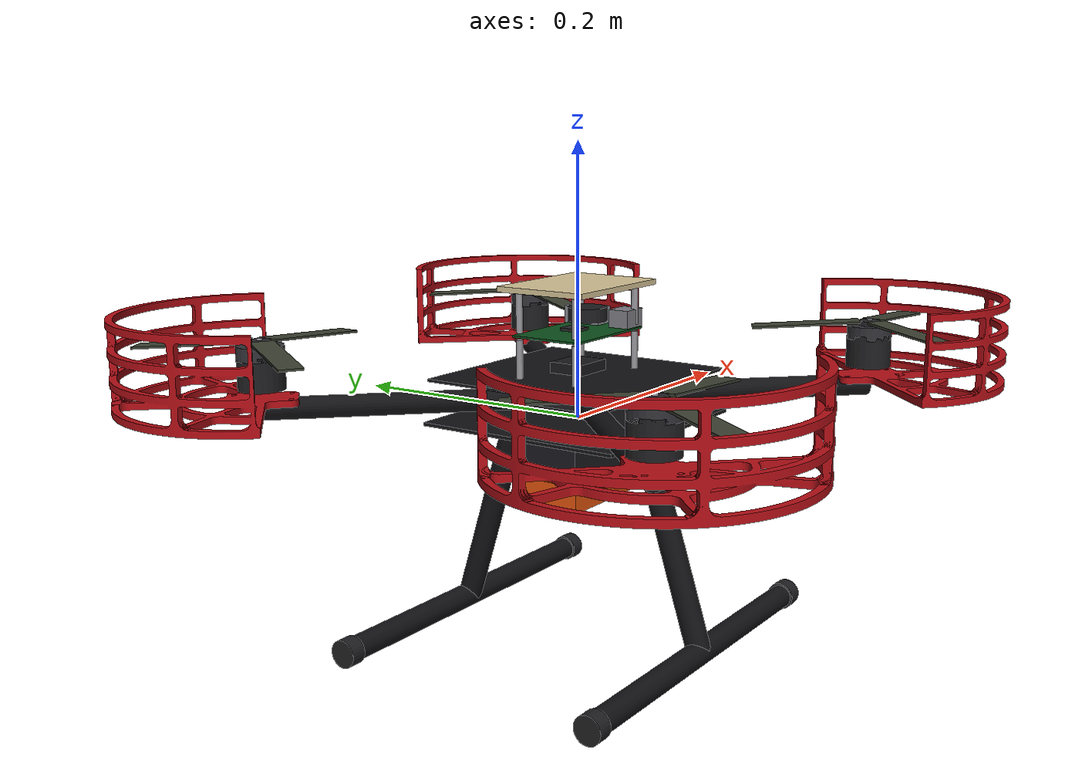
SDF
<?xml version="1.0" encoding="UTF-8"?>
<sdf version='1.9'>
  <model name='rjx_f450'>
    <include merge='true'>
      <uri>model://rjx_f450_base</uri>
    </include>
    <plugin filename="gz-sim-multicopter-motor-model-system"
      name="gz::sim::systems::MulticopterMotorModel">
      <jointName>rotor_0_joint</jointName>
      <linkName>rotor_0</linkName>
      <turningDirection>ccw</turningDirection>
      <timeConstantUp>0.0125</timeConstantUp>
      <timeConstantDown>0.025</timeConstantDown>
      <maxRotVelocity>1000.0</maxRotVelocity>
      <motorConstant>1.8e-05</motorConstant>
      <momentConstant>0.013</momentConstant>
      <commandSubTopic>command/motor_speed</commandSubTopic>
      <motorNumber>0</motorNumber>
      <rotorDragCoefficient>6.5e-05</rotorDragCoefficient>
      <rollingMomentCoefficient>1e-06</rollingMomentCoefficient>
      <rotorVelocitySlowdownSim>10</rotorVelocitySlowdownSim>
      <motorType>velocity</motorType>
    </plugin>
    <plugin filename="gz-sim-multicopter-motor-model-system"
      name="gz::sim::systems::MulticopterMotorModel">
      <jointName>rotor_1_joint</jointName>
      <linkName>rotor_1</linkName>
      <turningDirection>ccw</turningDirection>
      <timeConstantUp>0.0125</timeConstantUp>
      <timeConstantDown>0.025</timeConstantDown>
      <maxRotVelocity>1000.0</maxRotVelocity>
      <motorConstant>1.8e-05</motorConstant>
      <momentConstant>0.013</momentConstant>
      <commandSubTopic>command/motor_speed</commandSubTopic>
      <motorNumber>1</motorNumber>
      <rotorDragCoefficient>6.5e-05</rotorDragCoefficient>
      <rollingMomentCoefficient>1e-06</rollingMomentCoefficient>
      <rotorVelocitySlowdownSim>10</rotorVelocitySlowdownSim>
      <motorType>velocity</motorType>
    </plugin>
    <plugin filename="gz-sim-multicopter-motor-model-system"
      name="gz::sim::systems::MulticopterMotorModel">
      <jointName>rotor_2_joint</jointName>
      <linkName>rotor_2</linkName>
      <turningDirection>cw</turningDirection>
      <timeConstantUp>0.0125</timeConstantUp>
      <timeConstantDown>0.025</timeConstantDown>
      <maxRotVelocity>1000.0</maxRotVelocity>
      <motorConstant>1.8e-05</motorConstant>
      <momentConstant>0.013</momentConstant>
      <commandSubTopic>command/motor_speed</commandSubTopic>
      <motorNumber>2</motorNumber>
      <rotorDragCoefficient>6.5e-05</rotorDragCoefficient>
      <rollingMomentCoefficient>1e-06</rollingMomentCoefficient>
      <rotorVelocitySlowdownSim>10</rotorVelocitySlowdownSim>
      <motorType>velocity</motorType>
    </plugin>
    <plugin filename="gz-sim-multicopter-motor-model-system"
      name="gz::sim::systems::MulticopterMotorModel">
      <jointName>rotor_3_joint</jointName>
      <linkName>rotor_3</linkName>
      <turningDirection>cw</turningDirection>
      <timeConstantUp>0.0125</timeConstantUp>
      <timeConstantDown>0.025</timeConstantDown>
      <maxRotVelocity>1000.0</maxRotVelocity>
      <motorConstant>1.8e-05</motorConstant>
      <momentConstant>0.013</momentConstant>
      <commandSubTopic>command/motor_speed</commandSubTopic>
      <motorNumber>3</motorNumber>
      <rotorDragCoefficient>6.5e-05</rotorDragCoefficient>
      <rollingMomentCoefficient>1e-06</rollingMomentCoefficient>
      <rotorVelocitySlowdownSim>10</rotorVelocitySlowdownSim>
      <motorType>velocity</motorType>
    </plugin>
    <plugin filename="MotorFailurePlugin"
      name="gz::sim::systems::MotorFailureSystem">
    </plugin>
  </model>
</sdf>

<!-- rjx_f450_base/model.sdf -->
<sdf version='1.9'>
  <model name='rjx_f450_base'>
    <self_collide>false</self_collide>
    <link name="base_link">
      <inertial>
        <mass>1.2</mass>
        <inertia>
          <ixx>0.017440</ixx><ixy>0</ixy><ixz>0</ixz>
          <iyy>0.017440</iyy><iyz>0</iyz><izz>0.032000</izz>
        </inertia>
      </inertial>
      <gravity>true</gravity>
      <velocity_decay/>
      <collision name="body_collision">
        <pose>0 0 0.02 0 0 0</pose>
        <geometry><box><size>0.17 0.17 0.10</size></box></geometry>
      </collision>
      <collision name="battery_collision">
        <pose>0 0 -0.035 0 0 0</pose>
        <geometry><box><size>0.078 0.050 0.050</size></box></geometry>
      </collision>
      <collision name="guard_0_collision">
        <pose>0.1591 -0.1591 0.052 0 0 -0.7854</pose>
        <geometry><box><size>0.20 0.20 0.065</size></box></geometry>
      </collision>
      <collision name="guard_1_collision">
        <pose>-0.1591 0.1591 0.052 0 0 2.3562</pose>
        <geometry><box><size>0.20 0.20 0.065</size></box></geometry>
      </collision>
      <collision name="guard_2_collision">
        <pose>0.1591 0.1591 0.052 0 0 0.7854</pose>
        <geometry><box><size>0.20 0.20 0.065</size></box></geometry>
      </collision>
      <collision name="guard_3_collision">
        <pose>-0.1591 -0.1591 0.052 0 0 -2.3562</pose>
        <geometry><box><size>0.20 0.20 0.065</size></box></geometry>
      </collision>
      <collision name="skid_0_collision">
        <pose>0 0.1050 -0.16 0 1.5708 0</pose>
        <geometry><cylinder><radius>0.009</radius><length>0.28</length></cylinder></geometry>
        <surface><friction><ode><mu>1.0</mu><mu2>1.0</mu2></ode></friction></surface>
      </collision>
      <collision name="skid_1_collision">
        <pose>0 -0.1050 -0.16 0 1.5708 0</pose>
        <geometry><cylinder><radius>0.009</radius><length>0.28</length></cylinder></geometry>
        <surface><friction><ode><mu>1.0</mu><mu2>1.0</mu2></ode></friction></surface>
      </collision>
      <visual name="plate_bottom">
        <pose>0 0 0 0 0 0</pose>
        <geometry><box><size>0.16 0.16 0.0025</size></box></geometry>
        <material>
          <ambient>0.07 0.07 0.08 1</ambient>
          <diffuse>0.07 0.07 0.08 1</diffuse>
          <specular>0.25 0.25 0.25 1</specular>
        </material>
      </visual>
      <visual name="plate_top">
        <pose>0 0 0.032 0 0 0</pose>
        <geometry><box><size>0.155 0.155 0.002</size></box></geometry>
        <material>
          <ambient>0.07 0.07 0.08 1</ambient>
          <diffuse>0.07 0.07 0.08 1</diffuse>
          <specular>0.25 0.25 0.25 1</specular>
        </material>
      </visual>
      <visual name="esc_4in1">
        <pose>0 0 0.0075 0 0 0</pose>
        <geometry><box><size>0.044 0.0435 0.0052</size></box></geometry>
        <material>
          <ambient>0.09 0.09 0.10 1</ambient>
          <diffuse>0.09 0.09 0.10 1</diffuse>
          <specular>0.2 0.2 0.2 1</specular>
        </material>
      </visual>
      <visual name="fc_nxtpx4v2">
        <pose>0 0 0.0385 0 0 0</pose>
        <geometry><box><size>0.032 0.027 0.008</size></box></geometry>
        <material>
          <ambient>0.10 0.10 0.11 1</ambient>
          <diffuse>0.10 0.10 0.11 1</diffuse>
          <specular>0.2 0.2 0.2 1</specular>
        </material>
      </visual>
      <visual name="arm_0">
        <pose>0.0902 -0.0902 0.016 0 1.5708 -0.7854</pose>
        <geometry><cylinder><radius>0.008</radius><length>0.195</length></cylinder></geometry>
        <material>
          <ambient>0.07 0.07 0.08 1</ambient>
          <diffuse>0.07 0.07 0.08 1</diffuse>
          <specular>0.2 0.2 0.2 1</specular>
        </material>
      </visual>
      <visual name="motor_0">
        <pose>0.1591 -0.1591 0.0425 0 0 0</pose>
        <geometry><cylinder><radius>0.0167</radius><length>0.0247</length></cylinder></geometry>
        <material>
          <ambient>0.12 0.12 0.13 1</ambient>
          <diffuse>0.12 0.12 0.13 1</diffuse>
          <specular>0.4 0.4 0.4 1</specular>
        </material>
      </visual>
      <visual name="motor_bell_0">
        <pose>0.1591 -0.1591 0.0565 0 0 0</pose>
        <geometry><cylinder><radius>0.0167</radius><length>0.01</length></cylinder></geometry>
        <material>
          <ambient>0.20 0.20 0.22 1</ambient>
          <diffuse>0.20 0.20 0.22 1</diffuse>
          <specular>0.5 0.5 0.5 1</specular>
        </material>
      </visual>
      <visual name="motor_shaft_0">
        <pose>0.1591 -0.1591 0.0635 0 0 0</pose>
        <geometry><cylinder><radius>0.002</radius><length>0.006</length></cylinder></geometry>
        <material>
          <ambient>0.6 0.6 0.62 1</ambient>
          <diffuse>0.6 0.6 0.62 1</diffuse>
          <specular>0.7 0.7 0.7 1</specular>
        </material>
      </visual>
      <visual name="prop_guard_0">
        <pose>0.1591 -0.1591 0.052 0 0 -0.7854</pose>
        <geometry><mesh>
          <uri>model://rjx_f450_base/meshes/prop_guard.stl</uri>
          <scale>0.001 0.001 0.001</scale>
        </mesh></geometry>
        <material>
          <ambient>0.72 0.06 0.09 1</ambient>
          <diffuse>0.72 0.06 0.09 1</diffuse>
          <specular>0.15 0.05 0.05 1</specular>
        </material>
      </visual>
      <visual name="arm_1">
        <pose>-0.0902 0.0902 0.016 0 1.5708 2.3562</pose>
        <geometry><cylinder><radius>0.008</radius><length>0.195</length></cylinder></geometry>
        <material>
          <ambient>0.07 0.07 0.08 1</ambient>
          <diffuse>0.07 0.07 0.08 1</diffuse>
          <specular>0.2 0.2 0.2 1</specular>
        </material>
      </visual>
      <visual name="motor_1">
        <pose>-0.1591 0.1591 0.0425 0 0 0</pose>
        <geometry><cylinder><radius>0.0167</radius><length>0.0247</length></cylinder></geometry>
        <material>
          <ambient>0.12 0.12 0.13 1</ambient>
          <diffuse>0.12 0.12 0.13 1</diffuse>
          <specular>0.4 0.4 0.4 1</specular>
        </material>
      </visual>
      <visual name="motor_bell_1">
        <pose>-0.1591 0.1591 0.0565 0 0 0</pose>
        <geometry><cylinder><radius>0.0167</radius><length>0.01</length></cylinder></geometry>
        <material>
          <ambient>0.20 0.20 0.22 1</ambient>
          <diffuse>0.20 0.20 0.22 1</diffuse>
          <specular>0.5 0.5 0.5 1</specular>
        </material>
      </visual>
      <visual name="motor_shaft_1">
        <pose>-0.1591 0.1591 0.0635 0 0 0</pose>
        <geometry><cylinder><radius>0.002</radius><length>0.006</length></cylinder></geometry>
        <material>
          <ambient>0.6 0.6 0.62 1</ambient>
          <diffuse>0.6 0.6 0.62 1</diffuse>
          <specular>0.7 0.7 0.7 1</specular>
        </material>
      </visual>
      <visual name="prop_guard_1">
        <pose>-0.1591 0.1591 0.052 0 0 2.3562</pose>
        <geometry><mesh>
          <uri>model://rjx_f450_base/meshes/prop_guard.stl</uri>
          <scale>0.001 0.001 0.001</scale>
        </mesh></geometry>
        <material>
          <ambient>0.72 0.06 0.09 1</ambient>
          <diffuse>0.72 0.06 0.09 1</diffuse>
          <specular>0.15 0.05 0.05 1</specular>
        </material>
      </visual>
      <visual name="arm_2">
        <pose>0.0902 0.0902 0.016 0 1.5708 0.7854</pose>
        <geometry><cylinder><radius>0.008</radius><length>0.195</length></cylinder></geometry>
        <material>
          <ambient>0.07 0.07 0.08 1</ambient>
          <diffuse>0.07 0.07 0.08 1</diffuse>
          <specular>0.2 0.2 0.2 1</specular>
        </material>
      </visual>
      <visual name="motor_2">
        <pose>0.1591 0.1591 0.0425 0 0 0</pose>
        <geometry><cylinder><radius>0.0167</radius><length>0.0247</length></cylinder></geometry>
        <material>
          <ambient>0.12 0.12 0.13 1</ambient>
          <diffuse>0.12 0.12 0.13 1</diffuse>
          <specular>0.4 0.4 0.4 1</specular>
        </material>
      </visual>
      <visual name="motor_bell_2">
        <pose>0.1591 0.1591 0.0565 0 0 0</pose>
        <geometry><cylinder><radius>0.0167</radius><length>0.01</length></cylinder></geometry>
        <material>
          <ambient>0.20 0.20 0.22 1</ambient>
          <diffuse>0.20 0.20 0.22 1</diffuse>
          <specular>0.5 0.5 0.5 1</specular>
        </material>
      </visual>
      <visual name="motor_shaft_2">
        <pose>0.1591 0.1591 0.0635 0 0 0</pose>
        <geometry><cylinder><radius>0.002</radius><length>0.006</length></cylinder></geometry>
        <material>
          <ambient>0.6 0.6 0.62 1</ambient>
          <diffuse>0.6 0.6 0.62 1</diffuse>
          <specular>0.7 0.7 0.7 1</specular>
        </material>
      </visual>
      <visual name="prop_guard_2">
        <pose>0.1591 0.1591 0.052 0 0 0.7854</pose>
        <geometry><mesh>
          <uri>model://rjx_f450_base/meshes/prop_guard.stl</uri>
          <scale>0.001 0.001 0.001</scale>
        </mesh></geometry>
        <material>
          <ambient>0.72 0.06 0.09 1</ambient>
          <diffuse>0.72 0.06 0.09 1</diffuse>
          <specular>0.15 0.05 0.05 1</specular>
        </material>
      </visual>
      <visual name="arm_3">
        <pose>-0.0902 -0.0902 0.016 0 1.5708 -2.3562</pose>
        <geometry><cylinder><radius>0.008</radius><length>0.195</length></cylinder></geometry>
        <material>
          <ambient>0.07 0.07 0.08 1</ambient>
          <diffuse>0.07 0.07 0.08 1</diffuse>
          <specular>0.2 0.2 0.2 1</specular>
        </material>
      </visual>
      <visual name="motor_3">
        <pose>-0.1591 -0.1591 0.0425 0 0 0</pose>
        <geometry><cylinder><radius>0.0167</radius><length>0.0247</length></cylinder></geometry>
        <material>
          <ambient>0.12 0.12 0.13 1</ambient>
          <diffuse>0.12 0.12 0.13 1</diffuse>
          <specular>0.4 0.4 0.4 1</specular>
        </material>
      </visual>
      <visual name="motor_bell_3">
        <pose>-0.1591 -0.1591 0.0565 0 0 0</pose>
        <geometry><cylinder><radius>0.0167</radius><length>0.01</length></cylinder></geometry>
        <material>
          <ambient>0.20 0.20 0.22 1</ambient>
          <diffuse>0.20 0.20 0.22 1</diffuse>
          <specular>0.5 0.5 0.5 1</specular>
        </material>
      </visual>
      <visual name="motor_shaft_3">
        <pose>-0.1591 -0.1591 0.0635 0 0 0</pose>
        <geometry><cylinder><radius>0.002</radius><length>0.006</length></cylinder></geometry>
        <material>
          <ambient>0.6 0.6 0.62 1</ambient>
          <diffuse>0.6 0.6 0.62 1</diffuse>
          <specular>0.7 0.7 0.7 1</specular>
        </material>
      </visual>
      <visual name="prop_guard_3">
        <pose>-0.1591 -0.1591 0.052 0 0 -2.3562</pose>
        <geometry><mesh>
          <uri>model://rjx_f450_base/meshes/prop_guard.stl</uri>
          <scale>0.001 0.001 0.001</scale>
        </mesh></geometry>
        <material>
          <ambient>0.72 0.06 0.09 1</ambient>
          <diffuse>0.72 0.06 0.09 1</diffuse>
          <specular>0.15 0.05 0.05 1</specular>
        </material>
      </visual>
      <visual name="skid_0">
        <pose>0 0.1050 -0.16 0 1.5708 0</pose>
        <geometry><cylinder><radius>0.009</radius><length>0.28</length></cylinder></geometry>
        <material>
          <ambient>0.07 0.07 0.08 1</ambient>
          <diffuse>0.07 0.07 0.08 1</diffuse>
          <specular>0.2 0.2 0.2 1</specular>
        </material>
      </visual>
      <visual name="skid_0_cap_0">
        <pose>0.1400 0.1050 -0.16 0 1.5708 0</pose>
        <geometry><cylinder><radius>0.0105</radius><length>0.012</length></cylinder></geometry>
        <material>
          <ambient>0.12 0.12 0.13 1</ambient>
          <diffuse>0.12 0.12 0.13 1</diffuse>
          <specular>0.1 0.1 0.1 1</specular>
        </material>
      </visual>
      <visual name="skid_0_cap_1">
        <pose>-0.1400 0.1050 -0.16 0 1.5708 0</pose>
        <geometry><cylinder><radius>0.0105</radius><length>0.012</length></cylinder></geometry>
        <material>
          <ambient>0.12 0.12 0.13 1</ambient>
          <diffuse>0.12 0.12 0.13 1</diffuse>
          <specular>0.1 0.1 0.1 1</specular>
        </material>
      </visual>
      <visual name="strut_0">
        <pose>0 0.0800 -0.0810 0.3065 0 0</pose>
        <geometry><cylinder><radius>0.009</radius><length>0.16572265988693277</length></cylinder></geometry>
        <material>
          <ambient>0.07 0.07 0.08 1</ambient>
          <diffuse>0.07 0.07 0.08 1</diffuse>
          <specular>0.2 0.2 0.2 1</specular>
        </material>
      </visual>
      <visual name="skid_1">
        <pose>0 -0.1050 -0.16 0 1.5708 0</pose>
        <geometry><cylinder><radius>0.009</radius><length>0.28</length></cylinder></geometry>
        <material>
          <ambient>0.07 0.07 0.08 1</ambient>
          <diffuse>0.07 0.07 0.08 1</diffuse>
          <specular>0.2 0.2 0.2 1</specular>
        </material>
      </visual>
      <visual name="skid_1_cap_0">
        <pose>0.1400 -0.1050 -0.16 0 1.5708 0</pose>
        <geometry><cylinder><radius>0.0105</radius><length>0.012</length></cylinder></geometry>
        <material>
          <ambient>0.12 0.12 0.13 1</ambient>
          <diffuse>0.12 0.12 0.13 1</diffuse>
          <specular>0.1 0.1 0.1 1</specular>
        </material>
      </visual>
      <visual name="skid_1_cap_1">
        <pose>-0.1400 -0.1050 -0.16 0 1.5708 0</pose>
        <geometry><cylinder><radius>0.0105</radius><length>0.012</length></cylinder></geometry>
        <material>
          <ambient>0.12 0.12 0.13 1</ambient>
          <diffuse>0.12 0.12 0.13 1</diffuse>
          <specular>0.1 0.1 0.1 1</specular>
        </material>
      </visual>
      <visual name="strut_1">
        <pose>0 -0.0800 -0.0810 -0.3065 0 0</pose>
        <geometry><cylinder><radius>0.009</radius><length>0.16572265988693277</length></cylinder></geometry>
        <material>
          <ambient>0.07 0.07 0.08 1</ambient>
          <diffuse>0.07 0.07 0.08 1</diffuse>
          <specular>0.2 0.2 0.2 1</specular>
        </material>
      </visual>
      <visual name="battery">
        <pose>0 0 -0.030 0 0 0</pose>
        <geometry><box><size>0.074 0.044 0.034</size></box></geometry>
        <material>
          <ambient>0.10 0.10 0.12 1</ambient>
          <diffuse>0.10 0.10 0.12 1</diffuse>
          <specular>0.05 0.05 0.05 1</specular>
        </material>
      </visual>
      <visual name="battery_holder">
        <pose>0 0 -0.050 0 0 0</pose>
        <geometry><box><size>0.080 0.050 0.020</size></box></geometry>
        <material>
          <ambient>0.90 0.33 0.05 1</ambient>
          <diffuse>0.90 0.33 0.05 1</diffuse>
          <specular>0.1 0.1 0.1 1</specular>
        </material>
      </visual>
      <visual name="standoff_0">
        <pose>0.0390 0.0240 0.047 0 0 0</pose>
        <geometry><cylinder><radius>0.0025</radius><length>0.028</length></cylinder></geometry>
        <material>
          <ambient>0.6 0.6 0.62 1</ambient>
          <diffuse>0.6 0.6 0.62 1</diffuse>
          <specular>0.5 0.5 0.5 1</specular>
        </material>
      </visual>
      <visual name="standoff_1">
        <pose>0.0390 -0.0240 0.047 0 0 0</pose>
        <geometry><cylinder><radius>0.0025</radius><length>0.028</length></cylinder></geometry>
        <material>
          <ambient>0.6 0.6 0.62 1</ambient>
          <diffuse>0.6 0.6 0.62 1</diffuse>
          <specular>0.5 0.5 0.5 1</specular>
        </material>
      </visual>
      <visual name="standoff_2">
        <pose>-0.0390 0.0240 0.047 0 0 0</pose>
        <geometry><cylinder><radius>0.0025</radius><length>0.028</length></cylinder></geometry>
        <material>
          <ambient>0.6 0.6 0.62 1</ambient>
          <diffuse>0.6 0.6 0.62 1</diffuse>
          <specular>0.5 0.5 0.5 1</specular>
        </material>
      </visual>
      <visual name="standoff_3">
        <pose>-0.0390 -0.0240 0.047 0 0 0</pose>
        <geometry><cylinder><radius>0.0025</radius><length>0.028</length></cylinder></geometry>
        <material>
          <ambient>0.6 0.6 0.62 1</ambient>
          <diffuse>0.6 0.6 0.62 1</diffuse>
          <specular>0.5 0.5 0.5 1</specular>
        </material>
      </visual>
      <visual name="rpi4_pcb">
        <pose>0 0 0.0635 0 0 0</pose>
        <geometry><box><size>0.085 0.056 0.0016</size></box></geometry>
        <material>
          <ambient>0.05 0.32 0.11 1</ambient>
          <diffuse>0.05 0.32 0.11 1</diffuse>
          <specular>0.15 0.2 0.15 1</specular>
        </material>
      </visual>
      <visual name="rpi4_usb">
        <pose>0.036 0.016 0.0705 0 0 0</pose>
        <geometry><box><size>0.017 0.030 0.013</size></box></geometry>
        <material>
          <ambient>0.55 0.55 0.58 1</ambient>
          <diffuse>0.55 0.55 0.58 1</diffuse>
          <specular>0.5 0.5 0.5 1</specular>
        </material>
      </visual>
      <visual name="rpi4_eth">
        <pose>0.036 -0.018 0.0705 0 0 0</pose>
        <geometry><box><size>0.021 0.016 0.014</size></box></geometry>
        <material>
          <ambient>0.50 0.50 0.53 1</ambient>
          <diffuse>0.50 0.50 0.53 1</diffuse>
          <specular>0.5 0.5 0.5 1</specular>
        </material>
      </visual>
      <visual name="rpi4_soc">
        <pose>-0.005 0 0.0665 0 0 0</pose>
        <geometry><box><size>0.015 0.015 0.0022</size></box></geometry>
        <material>
          <ambient>0.15 0.15 0.16 1</ambient>
          <diffuse>0.15 0.15 0.16 1</diffuse>
          <specular>0.1 0.1 0.1 1</specular>
        </material>
      </visual>
      <visual name="standoff_hi_0">
        <pose>0.0390 0.0240 0.081 0 0 0</pose>
        <geometry><cylinder><radius>0.0025</radius><length>0.03</length></cylinder></geometry>
        <material>
          <ambient>0.6 0.6 0.62 1</ambient>
          <diffuse>0.6 0.6 0.62 1</diffuse>
          <specular>0.5 0.5 0.5 1</specular>
        </material>
      </visual>
      <visual name="standoff_hi_1">
        <pose>0.0390 -0.0240 0.081 0 0 0</pose>
        <geometry><cylinder><radius>0.0025</radius><length>0.03</length></cylinder></geometry>
        <material>
          <ambient>0.6 0.6 0.62 1</ambient>
          <diffuse>0.6 0.6 0.62 1</diffuse>
          <specular>0.5 0.5 0.5 1</specular>
        </material>
      </visual>
      <visual name="standoff_hi_2">
        <pose>-0.0390 0.0240 0.081 0 0 0</pose>
        <geometry><cylinder><radius>0.0025</radius><length>0.03</length></cylinder></geometry>
        <material>
          <ambient>0.6 0.6 0.62 1</ambient>
          <diffuse>0.6 0.6 0.62 1</diffuse>
          <specular>0.5 0.5 0.5 1</specular>
        </material>
      </visual>
      <visual name="standoff_hi_3">
        <pose>-0.0390 -0.0240 0.081 0 0 0</pose>
        <geometry><cylinder><radius>0.0025</radius><length>0.03</length></cylinder></geometry>
        <material>
          <ambient>0.6 0.6 0.62 1</ambient>
          <diffuse>0.6 0.6 0.62 1</diffuse>
          <specular>0.5 0.5 0.5 1</specular>
        </material>
      </visual>
      <visual name="deck_plate">
        <pose>0 0 0.0975 0 0 0</pose>
        <geometry><box><size>0.098 0.072 0.004</size></box></geometry>
        <material>
          <ambient>0.85 0.78 0.60 1</ambient>
          <diffuse>0.85 0.78 0.60 1</diffuse>
          <specular>0.08 0.08 0.08 1</specular>
        </material>
      </visual>
      <visual name="rpi4_fan">
        <pose>0.012 0 0.0755 0 0 0</pose>
        <geometry><cylinder><radius>0.0145</radius><length>0.01</length></cylinder></geometry>
        <material>
          <ambient>0.12 0.12 0.13 1</ambient>
          <diffuse>0.12 0.12 0.13 1</diffuse>
          <specular>0.2 0.2 0.2 1</specular>
        </material>
      </visual>
      <sensor name="air_pressure_sensor" type="air_pressure">
        <gz_frame_id>base_link</gz_frame_id>
        <always_on>1</always_on>
        <update_rate>50</update_rate>
        <air_pressure>
          <!-- Noise modeled after BMP390 -->
          <pressure>
            <noise type="gaussian">
              <mean>0</mean>
              <stddev>3</stddev>
            </noise>
          </pressure>
        </air_pressure>
      </sensor>
      <sensor name="magnetometer_sensor" type="magnetometer">
        <gz_frame_id>base_link</gz_frame_id>
        <always_on>1</always_on>
        <update_rate>100</update_rate>
        <magnetometer>
          <!-- TODO: update to fix units and coordinate system when we move past Harmonic -->
          <!-- See https://github.com/gazebosim/gz-sim/pull/2460 -->
          <!-- 3mgauss RMS: NOTE: noise is in tesla but sensor reports data in gauss -->
          <!-- Noise modeled after IIS2MDC -->
          <x>
            <noise type="gaussian">
              <stddev>0.0001</stddev>
            </noise>
          </x>
          <y>
            <noise type="gaussian">
              <stddev>0.0001</stddev>
            </noise>
          </y>
          <z>
            <noise type="gaussian">
              <stddev>0.0001</stddev>
            </noise>
          </z>
        </magnetometer>
      </sensor>
      <sensor name="imu_sensor" type="imu">
        <gz_frame_id>base_link</gz_frame_id>
        <always_on>1</always_on>
        <update_rate>200</update_rate>
        <imu>
          <angular_velocity>
            <!-- Noise modeled after IIM42653 -->
            <!-- 0.05 deg/s converted to rad/s -->
            <x>
              <noise type="gaussian">
                <mean>0.0</mean>
                <stddev>0.0008726646</stddev>
              </noise>
            </x>
            <y>
              <noise type="gaussian">
                <mean>0.0</mean>
                <stddev>0.0008726646</stddev>
              </noise>
            </y>
            <z>
              <noise type="gaussian">
                <mean>0.0</mean>
                <stddev>0.0008726646</stddev>
              </noise>
            </z>
          </angular_velocity>
          <linear_acceleration>
            <!-- Noise modeled after IIM42653 -->
            <!-- X & Y axis: 0.65 mg-rms converted to m/ss -->
            <x>
              <noise type="gaussian">
                <mean>0.0</mean>
                <stddev>0.00637</stddev>
              </noise>
            </x>
            <y>
              <noise type="gaussian">
                <mean>0.0</mean>
                <stddev>0.00637</stddev>
              </noise>
            </y>
            <!-- Z axis: 0.70 mg-rms converted to m/ss-->
            <z>
              <noise type="gaussian">
                <mean>0.0</mean>
                <stddev>0.00686</stddev>
              </noise>
            </z>
          </linear_acceleration>
        </imu>
      </sensor>
      <sensor name="navsat_sensor" type="navsat">
        <gz_frame_id>base_link</gz_frame_id>
        <always_on>1</always_on>
        <update_rate>30</update_rate>
      </sensor>
    </link>
    <link name="rotor_0">
      <gravity>true</gravity>
      <self_collide>false</self_collide>
      <velocity_decay/>
      <pose>0.1591 -0.1591 0.062 0 0 0</pose>
      <inertial>
        <mass>0.0095</mass>
        <inertia>
          <ixx>2.1e-07</ixx><ixy>0</ixy><ixz>0</ixz>
          <iyy>1.05e-05</iyy><iyz>0</iyz><izz>1.07e-05</izz>
        </inertia>
      </inertial>
      <visual name="rotor_0_hub">
        <geometry><cylinder><radius>0.008</radius><length>0.006</length></cylinder></geometry>
        <material>
          <ambient>0.15 0.15 0.16 1</ambient>
          <diffuse>0.15 0.15 0.16 1</diffuse>
          <specular>0.1 0.1 0.1 1</specular>
        </material>
      </visual>
      <visual name="rotor_0_blade_0">
        <pose>0.0480 0.0000 0 0 0.06 0.0000</pose>
        <geometry><box><size>0.081 0.017 0.0016</size></box></geometry>
        <material>
          <ambient>0.24 0.26 0.20 1</ambient>
          <diffuse>0.24 0.26 0.20 1</diffuse>
          <specular>0.15 0.15 0.15 1</specular>
        </material>
      </visual>
      <visual name="rotor_0_blade_1">
        <pose>-0.0240 0.0416 0 0 0.06 2.0944</pose>
        <geometry><box><size>0.081 0.017 0.0016</size></box></geometry>
        <material>
          <ambient>0.24 0.26 0.20 1</ambient>
          <diffuse>0.24 0.26 0.20 1</diffuse>
          <specular>0.15 0.15 0.15 1</specular>
        </material>
      </visual>
      <visual name="rotor_0_blade_2">
        <pose>-0.0240 -0.0416 0 0 0.06 4.1888</pose>
        <geometry><box><size>0.081 0.017 0.0016</size></box></geometry>
        <material>
          <ambient>0.24 0.26 0.20 1</ambient>
          <diffuse>0.24 0.26 0.20 1</diffuse>
          <specular>0.15 0.15 0.15 1</specular>
        </material>
      </visual>
      <collision name="rotor_0_collision">
        <geometry><box><size>0.1778 0.017 0.0016</size></box></geometry>
        <surface><contact><ode><min_depth>0.001</min_depth><max_vel>0</max_vel></ode></contact><friction><ode/></friction></surface>
      </collision>
    </link>
    <joint name="rotor_0_joint" type="revolute">
      <parent>base_link</parent>
      <child>rotor_0</child>
      <axis>
        <xyz>0 0 1</xyz>
        <limit><lower>-1e+16</lower><upper>1e+16</upper></limit>
        <dynamics><spring_reference>0</spring_reference><spring_stiffness>0</spring_stiffness></dynamics>
      </axis>
    </joint>
    <link name="rotor_1">
      <gravity>true</gravity>
      <self_collide>false</self_collide>
      <velocity_decay/>
      <pose>-0.1591 0.1591 0.062 0 0 0</pose>
      <inertial>
        <mass>0.0095</mass>
        <inertia>
          <ixx>2.1e-07</ixx><ixy>0</ixy><ixz>0</ixz>
          <iyy>1.05e-05</iyy><iyz>0</iyz><izz>1.07e-05</izz>
        </inertia>
      </inertial>
      <visual name="rotor_1_hub">
        <geometry><cylinder><radius>0.008</radius><length>0.006</length></cylinder></geometry>
        <material>
          <ambient>0.15 0.15 0.16 1</ambient>
          <diffuse>0.15 0.15 0.16 1</diffuse>
          <specular>0.1 0.1 0.1 1</specular>
        </material>
      </visual>
      <visual name="rotor_1_blade_0">
        <pose>0.0480 0.0000 0 0 0.06 0.0000</pose>
        <geometry><box><size>0.081 0.017 0.0016</size></box></geometry>
        <material>
          <ambient>0.24 0.26 0.20 1</ambient>
          <diffuse>0.24 0.26 0.20 1</diffuse>
          <specular>0.15 0.15 0.15 1</specular>
        </material>
      </visual>
      <visual name="rotor_1_blade_1">
        <pose>-0.0240 0.0416 0 0 0.06 2.0944</pose>
        <geometry><box><size>0.081 0.017 0.0016</size></box></geometry>
        <material>
          <ambient>0.24 0.26 0.20 1</ambient>
          <diffuse>0.24 0.26 0.20 1</diffuse>
          <specular>0.15 0.15 0.15 1</specular>
        </material>
      </visual>
      <visual name="rotor_1_blade_2">
        <pose>-0.0240 -0.0416 0 0 0.06 4.1888</pose>
        <geometry><box><size>0.081 0.017 0.0016</size></box></geometry>
        <material>
          <ambient>0.24 0.26 0.20 1</ambient>
          <diffuse>0.24 0.26 0.20 1</diffuse>
          <specular>0.15 0.15 0.15 1</specular>
        </material>
      </visual>
      <collision name="rotor_1_collision">
        <geometry><box><size>0.1778 0.017 0.0016</size></box></geometry>
        <surface><contact><ode><min_depth>0.001</min_depth><max_vel>0</max_vel></ode></contact><friction><ode/></friction></surface>
      </collision>
    </link>
    <joint name="rotor_1_joint" type="revolute">
      <parent>base_link</parent>
      <child>rotor_1</child>
      <axis>
        <xyz>0 0 1</xyz>
        <limit><lower>-1e+16</lower><upper>1e+16</upper></limit>
        <dynamics><spring_reference>0</spring_reference><spring_stiffness>0</spring_stiffness></dynamics>
      </axis>
    </joint>
    <link name="rotor_2">
      <gravity>true</gravity>
      <self_collide>false</self_collide>
      <velocity_decay/>
      <pose>0.1591 0.1591 0.062 0 0 0</pose>
      <inertial>
        <mass>0.0095</mass>
        <inertia>
          <ixx>2.1e-07</ixx><ixy>0</ixy><ixz>0</ixz>
          <iyy>1.05e-05</iyy><iyz>0</iyz><izz>1.07e-05</izz>
        </inertia>
      </inertial>
      <visual name="rotor_2_hub">
        <geometry><cylinder><radius>0.008</radius><length>0.006</length></cylinder></geometry>
        <material>
          <ambient>0.15 0.15 0.16 1</ambient>
          <diffuse>0.15 0.15 0.16 1</diffuse>
          <specular>0.1 0.1 0.1 1</specular>
        </material>
      </visual>
      <visual name="rotor_2_blade_0">
        <pose>0.0480 0.0000 0 0 0.06 0.0000</pose>
        <geometry><box><size>0.081 0.017 0.0016</size></box></geometry>
        <material>
          <ambient>0.24 0.26 0.20 1</ambient>
          <diffuse>0.24 0.26 0.20 1</diffuse>
          <specular>0.15 0.15 0.15 1</specular>
        </material>
      </visual>
      <visual name="rotor_2_blade_1">
        <pose>-0.0240 0.0416 0 0 0.06 2.0944</pose>
        <geometry><box><size>0.081 0.017 0.0016</size></box></geometry>
        <material>
          <ambient>0.24 0.26 0.20 1</ambient>
          <diffuse>0.24 0.26 0.20 1</diffuse>
          <specular>0.15 0.15 0.15 1</specular>
        </material>
      </visual>
      <visual name="rotor_2_blade_2">
        <pose>-0.0240 -0.0416 0 0 0.06 4.1888</pose>
        <geometry><box><size>0.081 0.017 0.0016</size></box></geometry>
        <material>
          <ambient>0.24 0.26 0.20 1</ambient>
          <diffuse>0.24 0.26 0.20 1</diffuse>
          <specular>0.15 0.15 0.15 1</specular>
        </material>
      </visual>
      <collision name="rotor_2_collision">
        <geometry><box><size>0.1778 0.017 0.0016</size></box></geometry>
        <surface><contact><ode><min_depth>0.001</min_depth><max_vel>0</max_vel></ode></contact><friction><ode/></friction></surface>
      </collision>
    </link>
    <joint name="rotor_2_joint" type="revolute">
      <parent>base_link</parent>
      <child>rotor_2</child>
      <axis>
        <xyz>0 0 1</xyz>
        <limit><lower>-1e+16</lower><upper>1e+16</upper></limit>
        <dynamics><spring_reference>0</spring_reference><spring_stiffness>0</spring_stiffness></dynamics>
      </axis>
    </joint>
    <link name="rotor_3">
      <gravity>true</gravity>
      <self_collide>false</self_collide>
      <velocity_decay/>
      <pose>-0.1591 -0.1591 0.062 0 0 0</pose>
      <inertial>
        <mass>0.0095</mass>
        <inertia>
          <ixx>2.1e-07</ixx><ixy>0</ixy><ixz>0</ixz>
          <iyy>1.05e-05</iyy><iyz>0</iyz><izz>1.07e-05</izz>
        </inertia>
      </inertial>
      <visual name="rotor_3_hub">
        <geometry><cylinder><radius>0.008</radius><length>0.006</length></cylinder></geometry>
        <material>
          <ambient>0.15 0.15 0.16 1</ambient>
          <diffuse>0.15 0.15 0.16 1</diffuse>
          <specular>0.1 0.1 0.1 1</specular>
        </material>
      </visual>
      <visual name="rotor_3_blade_0">
        <pose>0.0480 0.0000 0 0 0.06 0.0000</pose>
        <geometry><box><size>0.081 0.017 0.0016</size></box></geometry>
        <material>
          <ambient>0.24 0.26 0.20 1</ambient>
          <diffuse>0.24 0.26 0.20 1</diffuse>
          <specular>0.15 0.15 0.15 1</specular>
        </material>
      </visual>
      <visual name="rotor_3_blade_1">
        <pose>-0.0240 0.0416 0 0 0.06 2.0944</pose>
        <geometry><box><size>0.081 0.017 0.0016</size></box></geometry>
        <material>
          <ambient>0.24 0.26 0.20 1</ambient>
          <diffuse>0.24 0.26 0.20 1</diffuse>
          <specular>0.15 0.15 0.15 1</specular>
        </material>
      </visual>
      <visual name="rotor_3_blade_2">
        <pose>-0.0240 -0.0416 0 0 0.06 4.1888</pose>
        <geometry><box><size>0.081 0.017 0.0016</size></box></geometry>
        <material>
          <ambient>0.24 0.26 0.20 1</ambient>
          <diffuse>0.24 0.26 0.20 1</diffuse>
          <specular>0.15 0.15 0.15 1</specular>
        </material>
      </visual>
      <collision name="rotor_3_collision">
        <geometry><box><size>0.1778 0.017 0.0016</size></box></geometry>
        <surface><contact><ode><min_depth>0.001</min_depth><max_vel>0</max_vel></ode></contact><friction><ode/></friction></surface>
      </collision>
    </link>
    <joint name="rotor_3_joint" type="revolute">
      <parent>base_link</parent>
      <child>rotor_3</child>
      <axis>
        <xyz>0 0 1</xyz>
        <limit><lower>-1e+16</lower><upper>1e+16</upper></limit>
        <dynamics><spring_reference>0</spring_reference><spring_stiffness>0</spring_stiffness></dynamics>
      </axis>
    </joint>
  </model>
</sdf>
